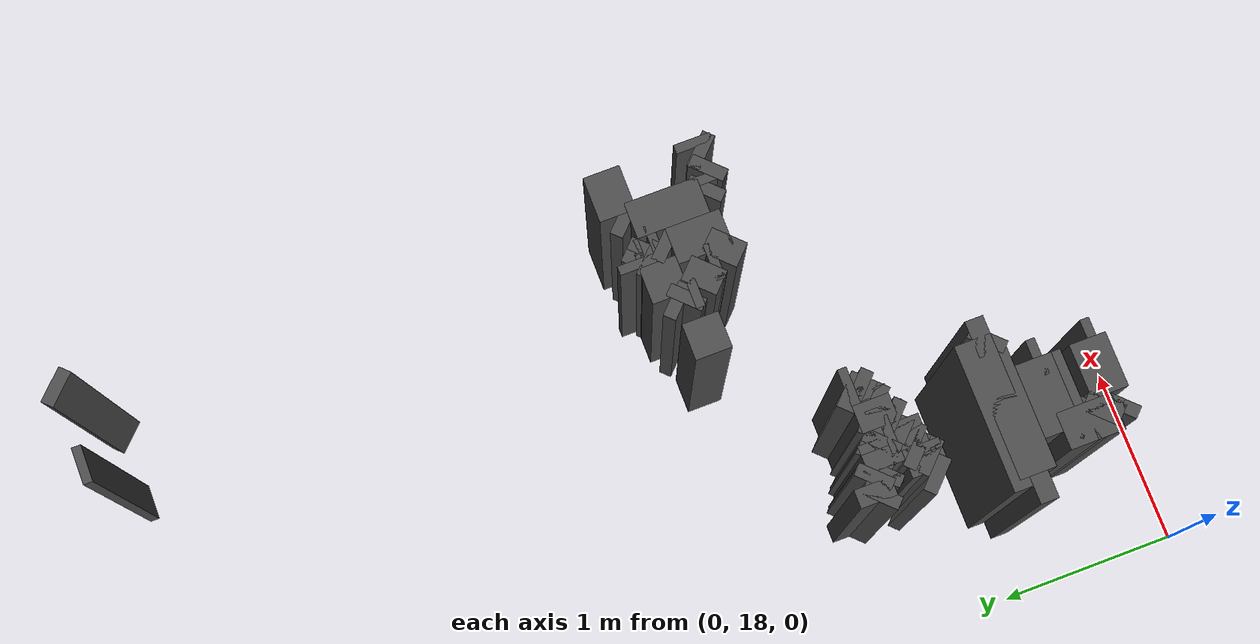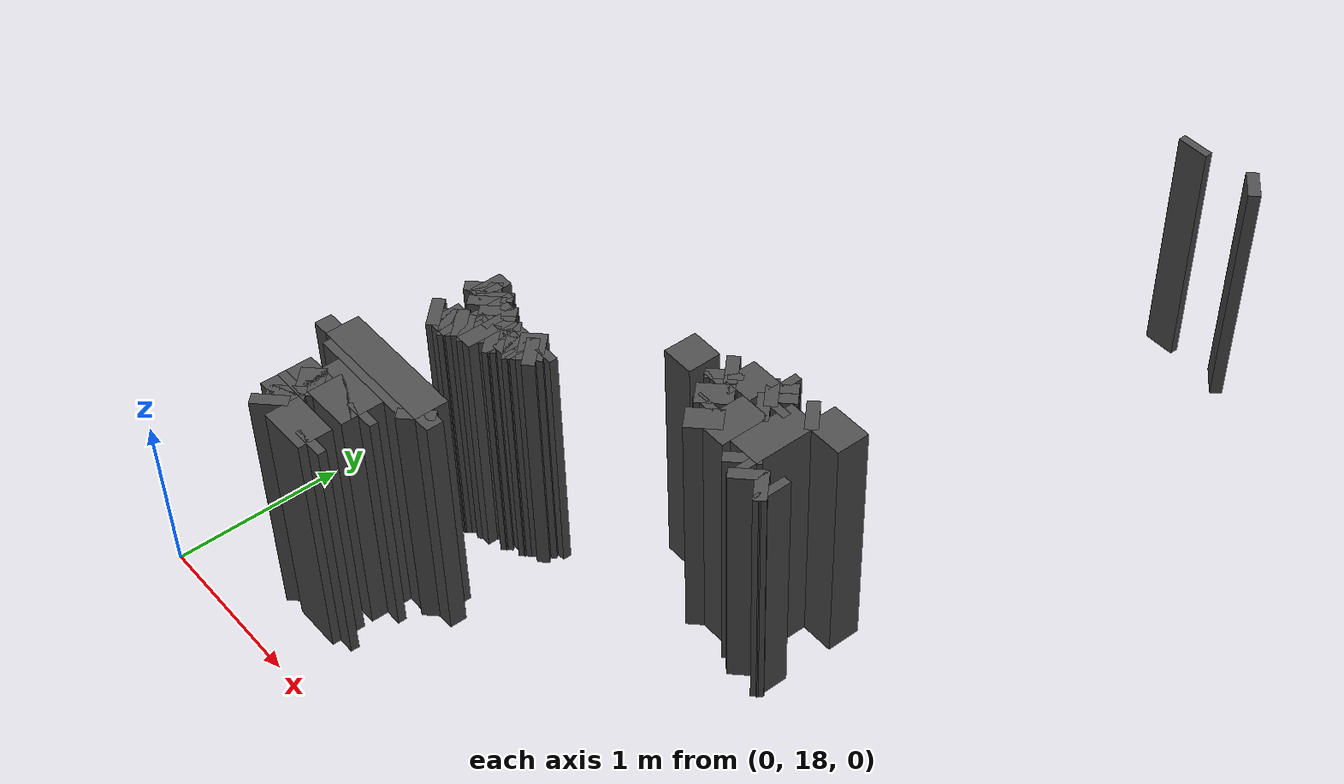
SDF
<sdf version="1.9">
 <model name="generated_walls">
  <static>true</static>
  <link name="wall_79_10">
   <pose>2.675 23.375 0.75 0 0 -2.356</pose>
   <collision name="collision"><geometry><box><size>0.071 0.2 1.5</size></box></geometry></collision>
   <visual name="visual">
    <geometry><box><size>0.071 0.2 1.5</size></box></geometry>
    <material><ambient>0.3 0.3 0.3 1</ambient></material>
   </visual>
  </link>
  <link name="wall_80_21">
   <pose>2.250 23.375 0.75 0 0 -1.571</pose>
   <collision name="collision"><geometry><box><size>0.050 0.2 1.5</size></box></geometry></collision>
   <visual name="visual">
    <geometry><box><size>0.050 0.2 1.5</size></box></geometry>
    <material><ambient>0.3 0.3 0.3 1</ambient></material>
   </visual>
  </link>
  <link name="wall_92_0">
   <pose>1.750 20.200 0.75 0 0 0.000</pose>
   <collision name="collision"><geometry><box><size>0.200 0.2 1.5</size></box></geometry></collision>
   <visual name="visual">
    <geometry><box><size>0.200 0.2 1.5</size></box></geometry>
    <material><ambient>0.3 0.3 0.3 1</ambient></material>
   </visual>
  </link>
  <link name="wall_94_0">
   <pose>2.150 19.950 0.75 0 0 2.356</pose>
   <collision name="collision"><geometry><box><size>0.141 0.2 1.5</size></box></geometry></collision>
   <visual name="visual">
    <geometry><box><size>0.141 0.2 1.5</size></box></geometry>
    <material><ambient>0.3 0.3 0.3 1</ambient></material>
   </visual>
  </link>
  <link name="wall_94_1">
   <pose>2.100 20.025 0.75 0 0 1.571</pose>
   <collision name="collision"><geometry><box><size>0.050 0.2 1.5</size></box></geometry></collision>
   <visual name="visual">
    <geometry><box><size>0.050 0.2 1.5</size></box></geometry>
    <material><ambient>0.3 0.3 0.3 1</ambient></material>
   </visual>
  </link>
  <link name="wall_94_2">
   <pose>2.050 20.100 0.75 0 0 2.356</pose>
   <collision name="collision"><geometry><box><size>0.141 0.2 1.5</size></box></geometry></collision>
   <visual name="visual">
    <geometry><box><size>0.141 0.2 1.5</size></box></geometry>
    <material><ambient>0.3 0.3 0.3 1</ambient></material>
   </visual>
  </link>
  <link name="wall_94_3">
   <pose>2.000 20.175 0.75 0 0 1.571</pose>
   <collision name="collision"><geometry><box><size>0.050 0.2 1.5</size></box></geometry></collision>
   <visual name="visual">
    <geometry><box><size>0.050 0.2 1.5</size></box></geometry>
    <material><ambient>0.3 0.3 0.3 1</ambient></material>
   </visual>
  </link>
  <link name="wall_94_4">
   <pose>1.975 20.225 0.75 0 0 2.356</pose>
   <collision name="collision"><geometry><box><size>0.071 0.2 1.5</size></box></geometry></collision>
   <visual name="visual">
    <geometry><box><size>0.071 0.2 1.5</size></box></geometry>
    <material><ambient>0.3 0.3 0.3 1</ambient></material>
   </visual>
  </link>
  <link name="wall_94_5">
   <pose>1.975 20.275 0.75 0 0 0.785</pose>
   <collision name="collision"><geometry><box><size>0.071 0.2 1.5</size></box></geometry></collision>
   <visual name="visual">
    <geometry><box><size>0.071 0.2 1.5</size></box></geometry>
    <material><ambient>0.3 0.3 0.3 1</ambient></material>
   </visual>
  </link>
  <link name="wall_94_6">
   <pose>2.100 20.300 0.75 0 0 0.000</pose>
   <collision name="collision"><geometry><box><size>0.200 0.2 1.5</size></box></geometry></collision>
   <visual name="visual">
    <geometry><box><size>0.200 0.2 1.5</size></box></geometry>
    <material><ambient>0.3 0.3 0.3 1</ambient></material>
   </visual>
  </link>
  <link name="wall_94_7">
   <pose>2.225 20.325 0.75 0 0 0.785</pose>
   <collision name="collision"><geometry><box><size>0.071 0.2 1.5</size></box></geometry></collision>
   <visual name="visual">
    <geometry><box><size>0.071 0.2 1.5</size></box></geometry>
    <material><ambient>0.3 0.3 0.3 1</ambient></material>
   </visual>
  </link>
  <link name="wall_94_8">
   <pose>2.225 20.375 0.75 0 0 2.356</pose>
   <collision name="collision"><geometry><box><size>0.071 0.2 1.5</size></box></geometry></collision>
   <visual name="visual">
    <geometry><box><size>0.071 0.2 1.5</size></box></geometry>
    <material><ambient>0.3 0.3 0.3 1</ambient></material>
   </visual>
  </link>
  <link name="wall_94_9">
   <pose>2.225 20.400 0.75 0 0 0.000</pose>
   <collision name="collision"><geometry><box><size>0.050 0.2 1.5</size></box></geometry></collision>
   <visual name="visual">
    <geometry><box><size>0.050 0.2 1.5</size></box></geometry>
    <material><ambient>0.3 0.3 0.3 1</ambient></material>
   </visual>
  </link>
  <link name="wall_94_10">
   <pose>2.250 20.375 0.75 0 0 -1.571</pose>
   <collision name="collision"><geometry><box><size>0.050 0.2 1.5</size></box></geometry></collision>
   <visual name="visual">
    <geometry><box><size>0.050 0.2 1.5</size></box></geometry>
    <material><ambient>0.3 0.3 0.3 1</ambient></material>
   </visual>
  </link>
  <link name="wall_94_11">
   <pose>2.275 20.325 0.75 0 0 -0.785</pose>
   <collision name="collision"><geometry><box><size>0.071 0.2 1.5</size></box></geometry></collision>
   <visual name="visual">
    <geometry><box><size>0.071 0.2 1.5</size></box></geometry>
    <material><ambient>0.3 0.3 0.3 1</ambient></material>
   </visual>
  </link>
  <link name="wall_94_12">
   <pose>2.300 20.275 0.75 0 0 -1.571</pose>
   <collision name="collision"><geometry><box><size>0.050 0.2 1.5</size></box></geometry></collision>
   <visual name="visual">
    <geometry><box><size>0.050 0.2 1.5</size></box></geometry>
    <material><ambient>0.3 0.3 0.3 1</ambient></material>
   </visual>
  </link>
  <link name="wall_94_13">
   <pose>2.275 20.225 0.75 0 0 -2.356</pose>
   <collision name="collision"><geometry><box><size>0.071 0.2 1.5</size></box></geometry></collision>
   <visual name="visual">
    <geometry><box><size>0.071 0.2 1.5</size></box></geometry>
    <material><ambient>0.3 0.3 0.3 1</ambient></material>
   </visual>
  </link>
  <link name="wall_94_14">
   <pose>2.250 20.050 0.75 0 0 -1.571</pose>
   <collision name="collision"><geometry><box><size>0.300 0.2 1.5</size></box></geometry></collision>
   <visual name="visual">
    <geometry><box><size>0.300 0.2 1.5</size></box></geometry>
    <material><ambient>0.3 0.3 0.3 1</ambient></material>
   </visual>
  </link>
  <link name="wall_95_0">
   <pose>2.575 19.875 0.75 0 0 2.356</pose>
   <collision name="collision"><geometry><box><size>0.071 0.2 1.5</size></box></geometry></collision>
   <visual name="visual">
    <geometry><box><size>0.071 0.2 1.5</size></box></geometry>
    <material><ambient>0.3 0.3 0.3 1</ambient></material>
   </visual>
  </link>
  <link name="wall_95_1">
   <pose>2.525 19.900 0.75 0 0 3.142</pose>
   <collision name="collision"><geometry><box><size>0.050 0.2 1.5</size></box></geometry></collision>
   <visual name="visual">
    <geometry><box><size>0.050 0.2 1.5</size></box></geometry>
    <material><ambient>0.3 0.3 0.3 1</ambient></material>
   </visual>
  </link>
  <link name="wall_95_2">
   <pose>2.475 19.925 0.75 0 0 2.356</pose>
   <collision name="collision"><geometry><box><size>0.071 0.2 1.5</size></box></geometry></collision>
   <visual name="visual">
    <geometry><box><size>0.071 0.2 1.5</size></box></geometry>
    <material><ambient>0.3 0.3 0.3 1</ambient></material>
   </visual>
  </link>
  <link name="wall_95_3">
   <pose>2.450 20.150 0.75 0 0 1.571</pose>
   <collision name="collision"><geometry><box><size>0.400 0.2 1.5</size></box></geometry></collision>
   <visual name="visual">
    <geometry><box><size>0.400 0.2 1.5</size></box></geometry>
    <material><ambient>0.3 0.3 0.3 1</ambient></material>
   </visual>
  </link>
  <link name="wall_95_4">
   <pose>2.475 20.375 0.75 0 0 0.785</pose>
   <collision name="collision"><geometry><box><size>0.071 0.2 1.5</size></box></geometry></collision>
   <visual name="visual">
    <geometry><box><size>0.071 0.2 1.5</size></box></geometry>
    <material><ambient>0.3 0.3 0.3 1</ambient></material>
   </visual>
  </link>
  <link name="wall_95_5">
   <pose>2.625 20.400 0.75 0 0 0.000</pose>
   <collision name="collision"><geometry><box><size>0.250 0.2 1.5</size></box></geometry></collision>
   <visual name="visual">
    <geometry><box><size>0.250 0.2 1.5</size></box></geometry>
    <material><ambient>0.3 0.3 0.3 1</ambient></material>
   </visual>
  </link>
  <link name="wall_95_11">
   <pose>2.725 19.900 0.75 0 0 3.142</pose>
   <collision name="collision"><geometry><box><size>0.050 0.2 1.5</size></box></geometry></collision>
   <visual name="visual">
    <geometry><box><size>0.050 0.2 1.5</size></box></geometry>
    <material><ambient>0.3 0.3 0.3 1</ambient></material>
   </visual>
  </link>
  <link name="wall_95_12">
   <pose>2.675 19.875 0.75 0 0 -2.356</pose>
   <collision name="collision"><geometry><box><size>0.071 0.2 1.5</size></box></geometry></collision>
   <visual name="visual">
    <geometry><box><size>0.071 0.2 1.5</size></box></geometry>
    <material><ambient>0.3 0.3 0.3 1</ambient></material>
   </visual>
  </link>
  <link name="wall_99_0">
   <pose>0.675 19.375 0.75 0 0 0.785</pose>
   <collision name="collision"><geometry><box><size>0.071 0.2 1.5</size></box></geometry></collision>
   <visual name="visual">
    <geometry><box><size>0.071 0.2 1.5</size></box></geometry>
    <material><ambient>0.3 0.3 0.3 1</ambient></material>
   </visual>
  </link>
  <link name="wall_99_1">
   <pose>0.750 19.400 0.75 0 0 0.000</pose>
   <collision name="collision"><geometry><box><size>0.100 0.2 1.5</size></box></geometry></collision>
   <visual name="visual">
    <geometry><box><size>0.100 0.2 1.5</size></box></geometry>
    <material><ambient>0.3 0.3 0.3 1</ambient></material>
   </visual>
  </link>
  <link name="wall_99_2">
   <pose>0.825 19.425 0.75 0 0 0.785</pose>
   <collision name="collision"><geometry><box><size>0.071 0.2 1.5</size></box></geometry></collision>
   <visual name="visual">
    <geometry><box><size>0.071 0.2 1.5</size></box></geometry>
    <material><ambient>0.3 0.3 0.3 1</ambient></material>
   </visual>
  </link>
  <link name="wall_99_3">
   <pose>0.875 19.450 0.75 0 0 0.000</pose>
   <collision name="collision"><geometry><box><size>0.050 0.2 1.5</size></box></geometry></collision>
   <visual name="visual">
    <geometry><box><size>0.050 0.2 1.5</size></box></geometry>
    <material><ambient>0.3 0.3 0.3 1</ambient></material>
   </visual>
  </link>
  <link name="wall_99_4">
   <pose>0.925 19.475 0.75 0 0 0.785</pose>
   <collision name="collision"><geometry><box><size>0.071 0.2 1.5</size></box></geometry></collision>
   <visual name="visual">
    <geometry><box><size>0.071 0.2 1.5</size></box></geometry>
    <material><ambient>0.3 0.3 0.3 1</ambient></material>
   </visual>
  </link>
  <link name="wall_99_5">
   <pose>0.950 19.525 0.75 0 0 1.571</pose>
   <collision name="collision"><geometry><box><size>0.050 0.2 1.5</size></box></geometry></collision>
   <visual name="visual">
    <geometry><box><size>0.050 0.2 1.5</size></box></geometry>
    <material><ambient>0.3 0.3 0.3 1</ambient></material>
   </visual>
  </link>
  <link name="wall_99_6">
   <pose>0.925 19.575 0.75 0 0 2.356</pose>
   <collision name="collision"><geometry><box><size>0.071 0.2 1.5</size></box></geometry></collision>
   <visual name="visual">
    <geometry><box><size>0.071 0.2 1.5</size></box></geometry>
    <material><ambient>0.3 0.3 0.3 1</ambient></material>
   </visual>
  </link>
  <link name="wall_99_7">
   <pose>0.850 19.600 0.75 0 0 3.142</pose>
   <collision name="collision"><geometry><box><size>0.100 0.2 1.5</size></box></geometry></collision>
   <visual name="visual">
    <geometry><box><size>0.100 0.2 1.5</size></box></geometry>
    <material><ambient>0.3 0.3 0.3 1</ambient></material>
   </visual>
  </link>
  <link name="wall_99_8">
   <pose>0.775 19.625 0.75 0 0 2.356</pose>
   <collision name="collision"><geometry><box><size>0.071 0.2 1.5</size></box></geometry></collision>
   <visual name="visual">
    <geometry><box><size>0.071 0.2 1.5</size></box></geometry>
    <material><ambient>0.3 0.3 0.3 1</ambient></material>
   </visual>
  </link>
  <link name="wall_99_9">
   <pose>0.725 19.650 0.75 0 0 3.142</pose>
   <collision name="collision"><geometry><box><size>0.050 0.2 1.5</size></box></geometry></collision>
   <visual name="visual">
    <geometry><box><size>0.050 0.2 1.5</size></box></geometry>
    <material><ambient>0.3 0.3 0.3 1</ambient></material>
   </visual>
  </link>
  <link name="wall_99_10">
   <pose>0.675 19.675 0.75 0 0 2.356</pose>
   <collision name="collision"><geometry><box><size>0.071 0.2 1.5</size></box></geometry></collision>
   <visual name="visual">
    <geometry><box><size>0.071 0.2 1.5</size></box></geometry>
    <material><ambient>0.3 0.3 0.3 1</ambient></material>
   </visual>
  </link>
  <link name="wall_99_11">
   <pose>0.700 19.700 0.75 0 0 0.000</pose>
   <collision name="collision"><geometry><box><size>0.100 0.2 1.5</size></box></geometry></collision>
   <visual name="visual">
    <geometry><box><size>0.100 0.2 1.5</size></box></geometry>
    <material><ambient>0.3 0.3 0.3 1</ambient></material>
   </visual>
  </link>
  <link name="wall_99_12">
   <pose>0.775 19.675 0.75 0 0 -0.785</pose>
   <collision name="collision"><geometry><box><size>0.071 0.2 1.5</size></box></geometry></collision>
   <visual name="visual">
    <geometry><box><size>0.071 0.2 1.5</size></box></geometry>
    <material><ambient>0.3 0.3 0.3 1</ambient></material>
   </visual>
  </link>
  <link name="wall_99_13">
   <pose>0.825 19.650 0.75 0 0 0.000</pose>
   <collision name="collision"><geometry><box><size>0.050 0.2 1.5</size></box></geometry></collision>
   <visual name="visual">
    <geometry><box><size>0.050 0.2 1.5</size></box></geometry>
    <material><ambient>0.3 0.3 0.3 1</ambient></material>
   </visual>
  </link>
  <link name="wall_99_14">
   <pose>0.875 19.625 0.75 0 0 -0.785</pose>
   <collision name="collision"><geometry><box><size>0.071 0.2 1.5</size></box></geometry></collision>
   <visual name="visual">
    <geometry><box><size>0.071 0.2 1.5</size></box></geometry>
    <material><ambient>0.3 0.3 0.3 1</ambient></material>
   </visual>
  </link>
  <link name="wall_99_15">
   <pose>0.925 19.600 0.75 0 0 0.000</pose>
   <collision name="collision"><geometry><box><size>0.050 0.2 1.5</size></box></geometry></collision>
   <visual name="visual">
    <geometry><box><size>0.050 0.2 1.5</size></box></geometry>
    <material><ambient>0.3 0.3 0.3 1</ambient></material>
   </visual>
  </link>
  <link name="wall_99_16">
   <pose>0.975 19.575 0.75 0 0 -0.785</pose>
   <collision name="collision"><geometry><box><size>0.071 0.2 1.5</size></box></geometry></collision>
   <visual name="visual">
    <geometry><box><size>0.071 0.2 1.5</size></box></geometry>
    <material><ambient>0.3 0.3 0.3 1</ambient></material>
   </visual>
  </link>
  <link name="wall_99_17">
   <pose>1.075 19.550 0.75 0 0 0.000</pose>
   <collision name="collision"><geometry><box><size>0.150 0.2 1.5</size></box></geometry></collision>
   <visual name="visual">
    <geometry><box><size>0.150 0.2 1.5</size></box></geometry>
    <material><ambient>0.3 0.3 0.3 1</ambient></material>
   </visual>
  </link>
  <link name="wall_99_18">
   <pose>1.200 19.600 0.75 0 0 0.785</pose>
   <collision name="collision"><geometry><box><size>0.141 0.2 1.5</size></box></geometry></collision>
   <visual name="visual">
    <geometry><box><size>0.141 0.2 1.5</size></box></geometry>
    <material><ambient>0.3 0.3 0.3 1</ambient></material>
   </visual>
  </link>
  <link name="wall_99_19">
   <pose>1.250 19.625 0.75 0 0 -1.571</pose>
   <collision name="collision"><geometry><box><size>0.050 0.2 1.5</size></box></geometry></collision>
   <visual name="visual">
    <geometry><box><size>0.050 0.2 1.5</size></box></geometry>
    <material><ambient>0.3 0.3 0.3 1</ambient></material>
   </visual>
  </link>
  <link name="wall_99_20">
   <pose>1.225 19.575 0.75 0 0 -2.356</pose>
   <collision name="collision"><geometry><box><size>0.071 0.2 1.5</size></box></geometry></collision>
   <visual name="visual">
    <geometry><box><size>0.071 0.2 1.5</size></box></geometry>
    <material><ambient>0.3 0.3 0.3 1</ambient></material>
   </visual>
  </link>
  <link name="wall_99_21">
   <pose>1.175 19.550 0.75 0 0 3.142</pose>
   <collision name="collision"><geometry><box><size>0.050 0.2 1.5</size></box></geometry></collision>
   <visual name="visual">
    <geometry><box><size>0.050 0.2 1.5</size></box></geometry>
    <material><ambient>0.3 0.3 0.3 1</ambient></material>
   </visual>
  </link>
  <link name="wall_99_22">
   <pose>1.125 19.525 0.75 0 0 -2.356</pose>
   <collision name="collision"><geometry><box><size>0.071 0.2 1.5</size></box></geometry></collision>
   <visual name="visual">
    <geometry><box><size>0.071 0.2 1.5</size></box></geometry>
    <material><ambient>0.3 0.3 0.3 1</ambient></material>
   </visual>
  </link>
  <link name="wall_99_23">
   <pose>1.075 19.500 0.75 0 0 3.142</pose>
   <collision name="collision"><geometry><box><size>0.050 0.2 1.5</size></box></geometry></collision>
   <visual name="visual">
    <geometry><box><size>0.050 0.2 1.5</size></box></geometry>
    <material><ambient>0.3 0.3 0.3 1</ambient></material>
   </visual>
  </link>
  <link name="wall_99_24">
   <pose>1.025 19.475 0.75 0 0 -2.356</pose>
   <collision name="collision"><geometry><box><size>0.071 0.2 1.5</size></box></geometry></collision>
   <visual name="visual">
    <geometry><box><size>0.071 0.2 1.5</size></box></geometry>
    <material><ambient>0.3 0.3 0.3 1</ambient></material>
   </visual>
  </link>
  <link name="wall_99_25">
   <pose>0.950 19.450 0.75 0 0 3.142</pose>
   <collision name="collision"><geometry><box><size>0.100 0.2 1.5</size></box></geometry></collision>
   <visual name="visual">
    <geometry><box><size>0.100 0.2 1.5</size></box></geometry>
    <material><ambient>0.3 0.3 0.3 1</ambient></material>
   </visual>
  </link>
  <link name="wall_99_26">
   <pose>0.875 19.425 0.75 0 0 -2.356</pose>
   <collision name="collision"><geometry><box><size>0.071 0.2 1.5</size></box></geometry></collision>
   <visual name="visual">
    <geometry><box><size>0.071 0.2 1.5</size></box></geometry>
    <material><ambient>0.3 0.3 0.3 1</ambient></material>
   </visual>
  </link>
  <link name="wall_99_27">
   <pose>0.825 19.400 0.75 0 0 3.142</pose>
   <collision name="collision"><geometry><box><size>0.050 0.2 1.5</size></box></geometry></collision>
   <visual name="visual">
    <geometry><box><size>0.050 0.2 1.5</size></box></geometry>
    <material><ambient>0.3 0.3 0.3 1</ambient></material>
   </visual>
  </link>
  <link name="wall_99_28">
   <pose>0.775 19.375 0.75 0 0 -2.356</pose>
   <collision name="collision"><geometry><box><size>0.071 0.2 1.5</size></box></geometry></collision>
   <visual name="visual">
    <geometry><box><size>0.071 0.2 1.5</size></box></geometry>
    <material><ambient>0.3 0.3 0.3 1</ambient></material>
   </visual>
  </link>
  <link name="wall_110_0">
   <pose>0.450 18.900 0.75 0 0 1.571</pose>
   <collision name="collision"><geometry><box><size>0.100 0.2 1.5</size></box></geometry></collision>
   <visual name="visual">
    <geometry><box><size>0.100 0.2 1.5</size></box></geometry>
    <material><ambient>0.3 0.3 0.3 1</ambient></material>
   </visual>
  </link>
  <link name="wall_110_1">
   <pose>0.850 18.950 0.75 0 0 0.000</pose>
   <collision name="collision"><geometry><box><size>0.800 0.2 1.5</size></box></geometry></collision>
   <visual name="visual">
    <geometry><box><size>0.800 0.2 1.5</size></box></geometry>
    <material><ambient>0.3 0.3 0.3 1</ambient></material>
   </visual>
  </link>
  <link name="wall_110_2">
   <pose>1.250 18.900 0.75 0 0 -1.571</pose>
   <collision name="collision"><geometry><box><size>0.100 0.2 1.5</size></box></geometry></collision>
   <visual name="visual">
    <geometry><box><size>0.100 0.2 1.5</size></box></geometry>
    <material><ambient>0.3 0.3 0.3 1</ambient></material>
   </visual>
  </link>
  <link name="wall_110_3">
   <pose>1.225 18.875 0.75 0 0 2.356</pose>
   <collision name="collision"><geometry><box><size>0.071 0.2 1.5</size></box></geometry></collision>
   <visual name="visual">
    <geometry><box><size>0.071 0.2 1.5</size></box></geometry>
    <material><ambient>0.3 0.3 0.3 1</ambient></material>
   </visual>
  </link>
  <link name="wall_110_4">
   <pose>0.850 18.900 0.75 0 0 3.142</pose>
   <collision name="collision"><geometry><box><size>0.700 0.2 1.5</size></box></geometry></collision>
   <visual name="visual">
    <geometry><box><size>0.700 0.2 1.5</size></box></geometry>
    <material><ambient>0.3 0.3 0.3 1</ambient></material>
   </visual>
  </link>
  <link name="wall_115_3">
   <pose>0.675 18.375 0.75 0 0 2.356</pose>
   <collision name="collision"><geometry><box><size>0.071 0.2 1.5</size></box></geometry></collision>
   <visual name="visual">
    <geometry><box><size>0.071 0.2 1.5</size></box></geometry>
    <material><ambient>0.3 0.3 0.3 1</ambient></material>
   </visual>
  </link>
  <link name="wall_115_4">
   <pose>0.650 18.550 0.75 0 0 1.571</pose>
   <collision name="collision"><geometry><box><size>0.300 0.2 1.5</size></box></geometry></collision>
   <visual name="visual">
    <geometry><box><size>0.300 0.2 1.5</size></box></geometry>
    <material><ambient>0.3 0.3 0.3 1</ambient></material>
   </visual>
  </link>
  <link name="wall_115_5">
   <pose>0.850 18.700 0.75 0 0 0.000</pose>
   <collision name="collision"><geometry><box><size>0.400 0.2 1.5</size></box></geometry></collision>
   <visual name="visual">
    <geometry><box><size>0.400 0.2 1.5</size></box></geometry>
    <material><ambient>0.3 0.3 0.3 1</ambient></material>
   </visual>
  </link>
  <link name="wall_115_6">
   <pose>1.050 18.675 0.75 0 0 -1.571</pose>
   <collision name="collision"><geometry><box><size>0.050 0.2 1.5</size></box></geometry></collision>
   <visual name="visual">
    <geometry><box><size>0.050 0.2 1.5</size></box></geometry>
    <material><ambient>0.3 0.3 0.3 1</ambient></material>
   </visual>
  </link>
  <link name="wall_115_7">
   <pose>0.900 18.650 0.75 0 0 3.142</pose>
   <collision name="collision"><geometry><box><size>0.300 0.2 1.5</size></box></geometry></collision>
   <visual name="visual">
    <geometry><box><size>0.300 0.2 1.5</size></box></geometry>
    <material><ambient>0.3 0.3 0.3 1</ambient></material>
   </visual>
  </link>
  <link name="wall_115_8">
   <pose>0.700 18.600 0.75 0 0 -2.356</pose>
   <collision name="collision"><geometry><box><size>0.141 0.2 1.5</size></box></geometry></collision>
   <visual name="visual">
    <geometry><box><size>0.141 0.2 1.5</size></box></geometry>
    <material><ambient>0.3 0.3 0.3 1</ambient></material>
   </visual>
  </link>
  <link name="wall_115_9">
   <pose>0.650 18.525 0.75 0 0 -1.571</pose>
   <collision name="collision"><geometry><box><size>0.050 0.2 1.5</size></box></geometry></collision>
   <visual name="visual">
    <geometry><box><size>0.050 0.2 1.5</size></box></geometry>
    <material><ambient>0.3 0.3 0.3 1</ambient></material>
   </visual>
  </link>
  <link name="wall_115_10">
   <pose>0.700 18.450 0.75 0 0 -0.785</pose>
   <collision name="collision"><geometry><box><size>0.141 0.2 1.5</size></box></geometry></collision>
   <visual name="visual">
    <geometry><box><size>0.141 0.2 1.5</size></box></geometry>
    <material><ambient>0.3 0.3 0.3 1</ambient></material>
   </visual>
  </link>
  <link name="wall_115_11">
   <pose>0.900 18.400 0.75 0 0 0.000</pose>
   <collision name="collision"><geometry><box><size>0.300 0.2 1.5</size></box></geometry></collision>
   <visual name="visual">
    <geometry><box><size>0.300 0.2 1.5</size></box></geometry>
    <material><ambient>0.3 0.3 0.3 1</ambient></material>
   </visual>
  </link>
  <link name="wall_115_12">
   <pose>1.050 18.375 0.75 0 0 -1.571</pose>
   <collision name="collision"><geometry><box><size>0.050 0.2 1.5</size></box></geometry></collision>
   <visual name="visual">
    <geometry><box><size>0.050 0.2 1.5</size></box></geometry>
    <material><ambient>0.3 0.3 0.3 1</ambient></material>
   </visual>
  </link>
 </model>
</sdf>
